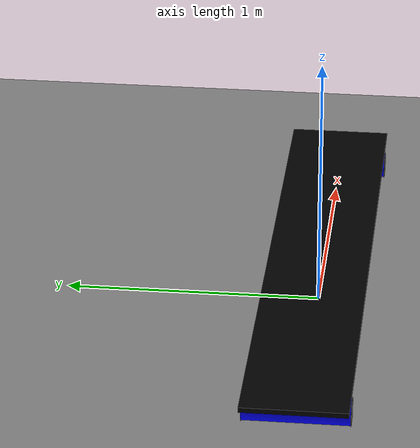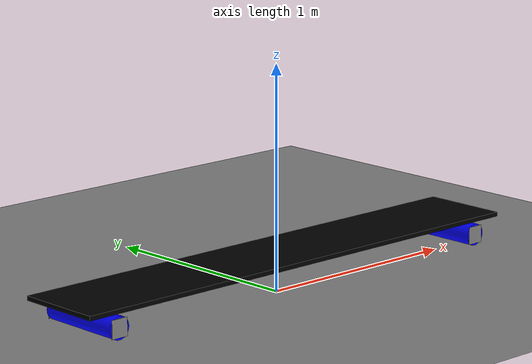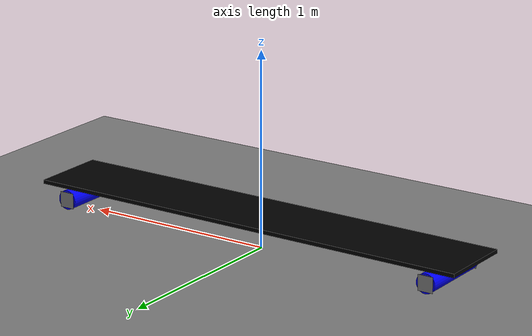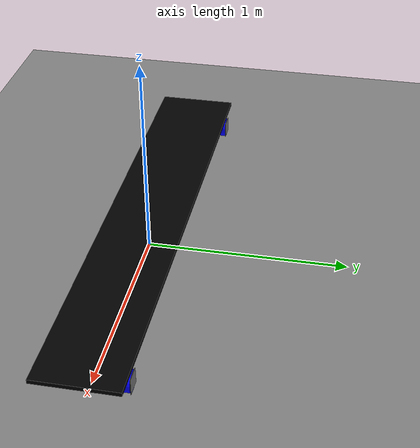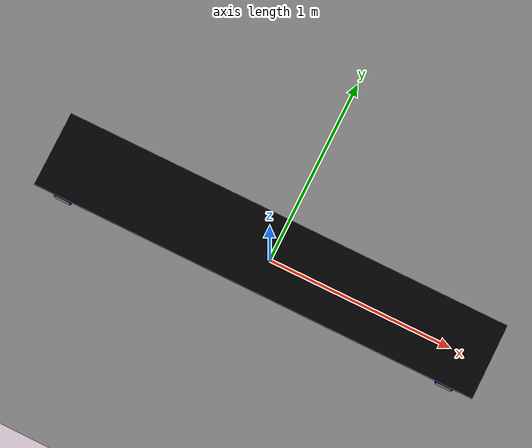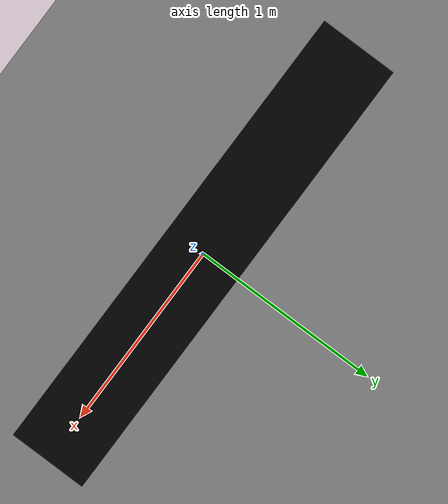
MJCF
<mujoco>
    <worldbody>
        <body name="floor">
            <geom type="plane" size="2 2 0.01" />
        </body>
    </worldbody>

    <worldbody>
        <body name="conveyor">
            <body name="roller1" euler="90 0 0" pos="1.05 0 0.1" >
                <geom type="cylinder" size="0.05 0.2" rgba="0 0 1 1" />
                <joint name="roller1_joint" type="hinge" damping="0.01" />
                <geom type="box" size="0.04 0.04 0.001" pos="0 0 -0.201" />
                <geom type="box" size="0.04 0.04 0.001" pos="0 0 0.201" />
                <site name="roller1_site" type="sphere" rgba="1 0 0 1" size="0.01" pos="0 0.05 0" />
            </body>

            <body name="roller2" euler="90 0 0" pos="-1.05 0 0.1" >
                <geom type="cylinder" size="0.05 0.2" rgba="0 0 1 1" />
                <joint name="roller2_joint" type="hinge" damping="0.01" />
                <geom type="box" size="0.04 0.04 0.001" pos="0 0 -0.201" />
                <geom type="box" size="0.04 0.04 0.001" pos="0 0 0.201" />
            </body>

            <body name="belt" pos="0 0 0.17" >
                <geom name="belt_geom" type="box" size="1.2 0.2 0.01" rgba="0 0 0 1" friction="0.2 0.005 0.0001" />
            </body>
        </body>

    </worldbody>

    <!-- The velocity of the two rollers should be the same. -->
    <equality>
        <joint joint1="roller1_joint" joint2="roller2_joint" />
    </equality>

    <actuator>
        <velocity name="roller_vel" joint="roller1_joint" ctrlrange="-100 100" />
    </actuator>

    <sensor>
        <velocimeter name="conv_velocimeter" site="roller1_site" />
    </sensor>

</mujoco>
